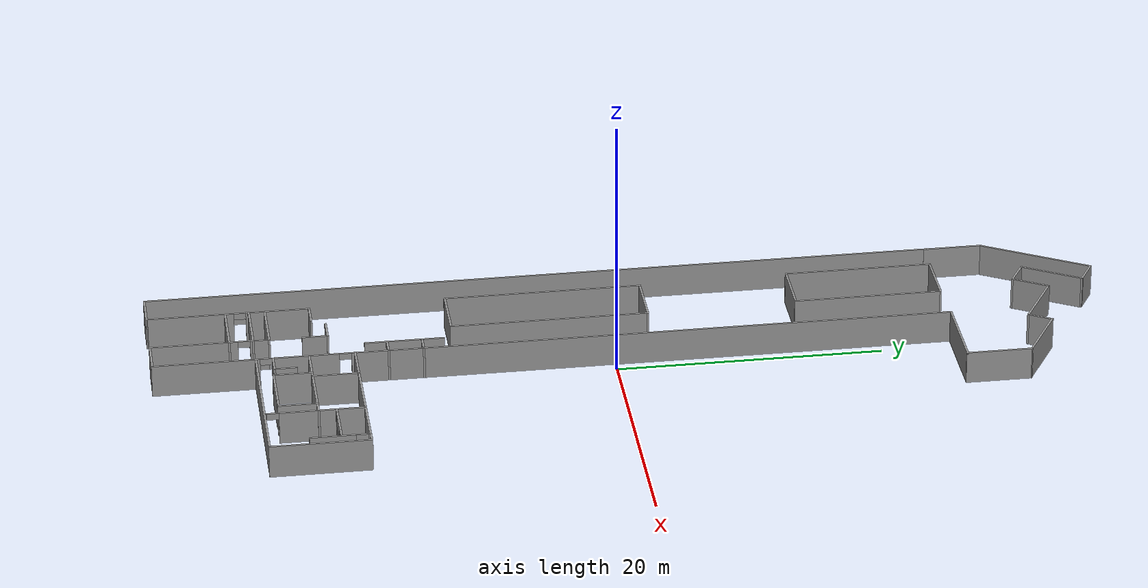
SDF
<?xml version='1.0'?>
<sdf version='1.6'>
  <model name='fei_k5'>
    <pose frame=''>0.621469 1.46181 0 0 -0 0</pose>
    <link name='Wall_10'>
      <collision name='Wall_10_Collision'>
        <geometry>
          <box>
            <size>4.5 0.15 2.5</size>
          </box>
        </geometry>
        <pose frame=''>0 0 1.25 0 -0 0</pose>
      </collision>
      <visual name='Wall_10_Visual'>
        <pose frame=''>0 0 1.25 0 -0 0</pose>
        <geometry>
          <box>
            <size>4.5 0.15 2.5</size>
          </box>
        </geometry>
        <material>
          <script>
            <uri>file://media/materials/scripts/gazebo.material</uri>
            <name>Gazebo/Grey</name>
          </script>
          <ambient>1 1 1 1</ambient>
        </material>
        <meta>
          <layer>0</layer>
        </meta>
      </visual>
      <pose frame=''>-6.57828 1.39977 0 0 -0 3.14159</pose>
    </link>
    <link name='Wall_11'>
      <collision name='Wall_11_Collision'>
        <geometry>
          <box>
            <size>15 0.15 2.5</size>
          </box>
        </geometry>
        <pose frame=''>0 0 1.25 0 -0 0</pose>
      </collision>
      <visual name='Wall_11_Visual'>
        <pose frame=''>0 0 1.25 0 -0 0</pose>
        <geometry>
          <box>
            <size>15 0.15 2.5</size>
          </box>
        </geometry>
        <material>
          <script>
            <uri>file://media/materials/scripts/gazebo.material</uri>
            <name>Gazebo/Grey</name>
          </script>
          <ambient>1 1 1 1</ambient>
        </material>
        <meta>
          <layer>0</layer>
        </meta>
      </visual>
      <pose frame=''>-8.75328 -6.02523 0 0 -0 -1.5708</pose>
    </link>
    <link name='Wall_16'>
      <collision name='Wall_16_Collision'>
        <geometry>
          <box>
            <size>4.5 0.15 2.5</size>
          </box>
        </geometry>
        <pose frame=''>0 0 1.25 0 -0 0</pose>
      </collision>
      <visual name='Wall_16_Visual'>
        <pose frame=''>0 0 1.25 0 -0 0</pose>
        <geometry>
          <box>
            <size>4.5 0.15 2.5</size>
          </box>
        </geometry>
        <material>
          <script>
            <uri>file://media/materials/scripts/gazebo.material</uri>
            <name>Gazebo/Grey</name>
          </script>
          <ambient>1 1 1 1</ambient>
        </material>
        <meta>
          <layer>0</layer>
        </meta>
      </visual>
      <pose frame=''>-6.85668 12.6908 0 0 -0 0</pose>
    </link>
    <link name='Wall_17'>
      <collision name='Wall_17_Collision'>
        <geometry>
          <box>
            <size>11.25 0.15 2.5</size>
          </box>
        </geometry>
        <pose frame=''>0 0 1.25 0 -0 0</pose>
      </collision>
      <visual name='Wall_17_Visual'>
        <pose frame=''>0 0 1.25 0 -0 0</pose>
        <geometry>
          <box>
            <size>11.25 0.15 2.5</size>
          </box>
        </geometry>
        <material>
          <script>
            <uri>file://media/materials/scripts/gazebo.material</uri>
            <name>Gazebo/Grey</name>
          </script>
          <ambient>1 1 1 1</ambient>
        </material>
        <meta>
          <layer>0</layer>
        </meta>
      </visual>
      <pose frame=''>-4.68168 18.2408 0 0 -0 1.5708</pose>
    </link>
    <link name='Wall_18'>
      <collision name='Wall_18_Collision'>
        <geometry>
          <box>
            <size>4.5 0.15 2.5</size>
          </box>
        </geometry>
        <pose frame=''>0 0 1.25 0 -0 0</pose>
      </collision>
      <visual name='Wall_18_Visual'>
        <pose frame=''>0 0 1.25 0 -0 0</pose>
        <geometry>
          <box>
            <size>4.5 0.15 2.5</size>
          </box>
        </geometry>
        <material>
          <script>
            <uri>file://media/materials/scripts/gazebo.material</uri>
            <name>Gazebo/Grey</name>
          </script>
          <ambient>1 1 1 1</ambient>
        </material>
        <meta>
          <layer>0</layer>
        </meta>
      </visual>
      <pose frame=''>-6.85668 23.7908 0 0 -0 3.14159</pose>
    </link>
    <link name='Wall_19'>
      <collision name='Wall_19_Collision'>
        <geometry>
          <box>
            <size>11.25 0.15 2.5</size>
          </box>
        </geometry>
        <pose frame=''>0 0 1.25 0 -0 0</pose>
      </collision>
      <visual name='Wall_19_Visual'>
        <pose frame=''>0 0 1.25 0 -0 0</pose>
        <geometry>
          <box>
            <size>11.25 0.15 2.5</size>
          </box>
        </geometry>
        <material>
          <script>
            <uri>file://media/materials/scripts/gazebo.material</uri>
            <name>Gazebo/Grey</name>
          </script>
          <ambient>1 1 1 1</ambient>
        </material>
        <meta>
          <layer>0</layer>
        </meta>
      </visual>
      <pose frame=''>-9.03168 18.2408 0 0 -0 -1.5708</pose>
    </link>
    <link name='Wall_21'>
      <collision name='Wall_21_Collision'>
        <geometry>
          <box>
            <size>3 0.15 2.5</size>
          </box>
        </geometry>
        <pose frame=''>0 0 1.25 0 -0 0</pose>
      </collision>
      <visual name='Wall_21_Visual'>
        <pose frame=''>0 0 1.25 0 -0 0</pose>
        <geometry>
          <box>
            <size>3 0.15 2.5</size>
          </box>
        </geometry>
        <material>
          <script>
            <uri>file://media/materials/scripts/gazebo.material</uri>
            <name>Gazebo/Grey</name>
          </script>
          <ambient>1 1 1 1</ambient>
        </material>
        <meta>
          <layer>0</layer>
        </meta>
      </visual>
      <pose frame=''>-2.81965 -35.9036 0 0 -0 0</pose>
    </link>
    <link name='Wall_22'>
      <pose frame=''>-1.39465 -5.97863 0 0 -0 1.5708</pose>
      <visual name='Wall_22_Visual_0'>
        <pose frame=''>-25.9925 0 1.25 0 -0 0</pose>
        <geometry>
          <box>
            <size>8.01507 0.15 2.5</size>
          </box>
        </geometry>
        <material>
          <script>
            <uri>file://media/materials/scripts/gazebo.material</uri>
            <name>Gazebo/Grey</name>
          </script>
          <ambient>1 1 1 1</ambient>
        </material>
        <meta>
          <layer>0</layer>
        </meta>
      </visual>
      <collision name='Wall_22_Collision_0'>
        <geometry>
          <box>
            <size>8.01507 0.15 2.5</size>
          </box>
        </geometry>
        <pose frame=''>-25.9925 0 1.25 0 -0 0</pose>
      </collision>
      <visual name='Wall_22_Visual_1'>
        <pose frame=''>-18.5953 0 1.25 0 -0 0</pose>
        <geometry>
          <box>
            <size>4.97924 0.15 2.5</size>
          </box>
        </geometry>
        <material>
          <script>
            <uri>file://media/materials/scripts/gazebo.material</uri>
            <name>Gazebo/Grey</name>
          </script>
          <ambient>1 1 1 1</ambient>
        </material>
        <meta>
          <layer>0</layer>
        </meta>
      </visual>
      <collision name='Wall_22_Collision_1'>
        <geometry>
          <box>
            <size>4.97924 0.15 2.5</size>
          </box>
        </geometry>
        <pose frame=''>-18.5953 0 1.25 0 -0 0</pose>
      </collision>
      <visual name='Wall_22_Visual_2'>
        <pose frame=''>7.39715 0 1.25 0 -0 0</pose>
        <geometry>
          <box>
            <size>45.2057 0.15 2.5</size>
          </box>
        </geometry>
        <material>
          <script>
            <uri>file://media/materials/scripts/gazebo.material</uri>
            <name>Gazebo/Grey</name>
          </script>
          <ambient>1 1 1 1</ambient>
        </material>
        <meta>
          <layer>0</layer>
        </meta>
      </visual>
      <collision name='Wall_22_Collision_2'>
        <geometry>
          <box>
            <size>45.2057 0.15 2.5</size>
          </box>
        </geometry>
        <pose frame=''>7.39715 0 1.25 0 -0 0</pose>
      </collision>
      <visual name='Wall_22_Visual_3'>
        <pose frame=''>-21.5349 0 2.25 0 -0 0</pose>
        <geometry>
          <box>
            <size>0.9 0.15 0.5</size>
          </box>
        </geometry>
        <material>
          <script>
            <uri>file://media/materials/scripts/gazebo.material</uri>
            <name>Gazebo/Grey</name>
          </script>
          <ambient>1 1 1 1</ambient>
        </material>
        <meta>
          <layer>0</layer>
        </meta>
      </visual>
      <collision name='Wall_22_Collision_3'>
        <geometry>
          <box>
            <size>0.9 0.15 0.5</size>
          </box>
        </geometry>
        <pose frame=''>-21.5349 0 2.25 0 -0 0</pose>
      </collision>
      <visual name='Wall_22_Visual_4'>
        <pose frame=''>-15.6557 0 2.25 0 -0 0</pose>
        <geometry>
          <box>
            <size>0.9 0.15 0.5</size>
          </box>
        </geometry>
        <material>
          <script>
            <uri>file://media/materials/scripts/gazebo.material</uri>
            <name>Gazebo/Grey</name>
          </script>
          <ambient>1 1 1 1</ambient>
        </material>
        <meta>
          <layer>0</layer>
        </meta>
      </visual>
      <collision name='Wall_22_Collision_4'>
        <geometry>
          <box>
            <size>0.9 0.15 0.5</size>
          </box>
        </geometry>
        <pose frame=''>-15.6557 0 2.25 0 -0 0</pose>
      </collision>
    </link>
    <link name='Wall_24'>
      <collision name='Wall_24_Collision'>
        <geometry>
          <box>
            <size>6.5 0.15 2.5</size>
          </box>
        </geometry>
        <pose frame=''>0 0 1.25 0 -0 0</pose>
      </collision>
      <visual name='Wall_24_Visual'>
        <pose frame=''>0 0 1.25 0 -0 0</pose>
        <geometry>
          <box>
            <size>6.5 0.15 2.5</size>
          </box>
        </geometry>
        <material>
          <script>
            <uri>file://media/materials/scripts/gazebo.material</uri>
            <name>Gazebo/Grey</name>
          </script>
          <ambient>1 1 1 1</ambient>
        </material>
        <meta>
          <layer>0</layer>
        </meta>
      </visual>
      <pose frame=''>1.78035 23.9464 0 0 -0 0</pose>
    </link>
    <link name='Wall_25'>
      <collision name='Wall_25_Collision'>
        <geometry>
          <box>
            <size>5 0.15 2.5</size>
          </box>
        </geometry>
        <pose frame=''>0 0 1.25 0 -0 0</pose>
      </collision>
      <visual name='Wall_25_Visual'>
        <pose frame=''>0 0 1.25 0 -0 0</pose>
        <geometry>
          <box>
            <size>5 0.15 2.5</size>
          </box>
        </geometry>
        <material>
          <script>
            <uri>file://media/materials/scripts/gazebo.material</uri>
            <name>Gazebo/Grey</name>
          </script>
          <ambient>1 1 1 1</ambient>
        </material>
        <meta>
          <layer>0</layer>
        </meta>
      </visual>
      <pose frame=''>4.95535 26.3714 0 0 -0 1.5708</pose>
    </link>
    <link name='Wall_26'>
      <collision name='Wall_26_Collision'>
        <geometry>
          <box>
            <size>5 0.15 2.5</size>
          </box>
        </geometry>
        <pose frame=''>0 0 1.25 0 -0 0</pose>
      </collision>
      <visual name='Wall_26_Visual'>
        <pose frame=''>0 0 1.25 0 -0 0</pose>
        <geometry>
          <box>
            <size>5 0.15 2.5</size>
          </box>
        </geometry>
        <material>
          <script>
            <uri>file://media/materials/scripts/gazebo.material</uri>
            <name>Gazebo/Grey</name>
          </script>
          <ambient>1 1 1 1</ambient>
        </material>
        <meta>
          <layer>0</layer>
        </meta>
      </visual>
      <pose frame=''>2.85524 30.0089 0 0 -0 2.61799</pose>
    </link>
    <link name='Wall_27'>
      <collision name='Wall_27_Collision'>
        <geometry>
          <box>
            <size>2 0.15 2.5</size>
          </box>
        </geometry>
        <pose frame=''>0 0 1.25 0 -0 0</pose>
      </collision>
      <visual name='Wall_27_Visual'>
        <pose frame=''>0 0 1.25 0 -0 0</pose>
        <geometry>
          <box>
            <size>2 0.15 2.5</size>
          </box>
        </geometry>
        <material>
          <script>
            <uri>file://media/materials/scripts/gazebo.material</uri>
            <name>Gazebo/Grey</name>
          </script>
          <ambient>1 1 1 1</ambient>
        </material>
        <meta>
          <layer>0</layer>
        </meta>
      </visual>
      <pose frame=''>0.292625 30.4203 0 0 -0 -2.0944</pose>
    </link>
    <link name='Wall_28'>
      <collision name='Wall_28_Collision'>
        <geometry>
          <box>
            <size>5 0.15 2.5</size>
          </box>
        </geometry>
        <pose frame=''>0 0 1.25 0 -0 0</pose>
      </collision>
      <visual name='Wall_28_Visual'>
        <pose frame=''>0 0 1.25 0 -0 0</pose>
        <geometry>
          <box>
            <size>5 0.15 2.5</size>
          </box>
        </geometry>
        <material>
          <script>
            <uri>file://media/materials/scripts/gazebo.material</uri>
            <name>Gazebo/Grey</name>
          </script>
          <ambient>1 1 1 1</ambient>
        </material>
        <meta>
          <layer>0</layer>
        </meta>
      </visual>
      <pose frame=''>-2.26999 30.8317 0 0 -0 2.61799</pose>
    </link>
    <link name='Wall_29'>
      <collision name='Wall_29_Collision'>
        <geometry>
          <box>
            <size>3 0.15 2.5</size>
          </box>
        </geometry>
        <pose frame=''>0 0 1.25 0 -0 0</pose>
      </collision>
      <visual name='Wall_29_Visual'>
        <pose frame=''>0 0 1.25 0 -0 0</pose>
        <geometry>
          <box>
            <size>3 0.15 2.5</size>
          </box>
        </geometry>
        <material>
          <script>
            <uri>file://media/materials/scripts/gazebo.material</uri>
            <name>Gazebo/Grey</name>
          </script>
          <ambient>1 1 1 1</ambient>
        </material>
        <meta>
          <layer>0</layer>
        </meta>
      </visual>
      <pose frame=''>-5.0826 30.8101 0 0 -0 -2.0944</pose>
    </link>
    <link name='Wall_30'>
      <collision name='Wall_30_Collision'>
        <geometry>
          <box>
            <size>2.25 0.15 2.5</size>
          </box>
        </geometry>
        <pose frame=''>0 0 1.25 0 -0 0</pose>
      </collision>
      <visual name='Wall_30_Visual'>
        <pose frame=''>0 0 1.25 0 -0 0</pose>
        <geometry>
          <box>
            <size>2.25 0.15 2.5</size>
          </box>
        </geometry>
        <material>
          <script>
            <uri>file://media/materials/scripts/gazebo.material</uri>
            <name>Gazebo/Grey</name>
          </script>
          <ambient>1 1 1 1</ambient>
        </material>
        <meta>
          <layer>0</layer>
        </meta>
      </visual>
      <pose frame=''>-6.70442 30.101 0 0 -0 2.61799</pose>
    </link>
    <link name='Wall_31'>
      <collision name='Wall_31_Collision'>
        <geometry>
          <box>
            <size>5 0.15 2.5</size>
          </box>
        </geometry>
        <pose frame=''>0 0 1.25 0 -0 0</pose>
      </collision>
      <visual name='Wall_31_Visual'>
        <pose frame=''>0 0 1.25 0 -0 0</pose>
        <geometry>
          <box>
            <size>5 0.15 2.5</size>
          </box>
        </geometry>
        <material>
          <script>
            <uri>file://media/materials/scripts/gazebo.material</uri>
            <name>Gazebo/Grey</name>
          </script>
          <ambient>1 1 1 1</ambient>
        </material>
        <meta>
          <layer>0</layer>
        </meta>
      </visual>
      <pose frame=''>-6.40125 32.7262 0 0 -0 1.0472</pose>
    </link>
    <link name='Wall_32'>
      <collision name='Wall_32_Collision'>
        <geometry>
          <box>
            <size>2.25 0.15 2.5</size>
          </box>
        </geometry>
        <pose frame=''>0 0 1.25 0 -0 0</pose>
      </collision>
      <visual name='Wall_32_Visual'>
        <pose frame=''>0 0 1.25 0 -0 0</pose>
        <geometry>
          <box>
            <size>2.25 0.15 2.5</size>
          </box>
        </geometry>
        <material>
          <script>
            <uri>file://media/materials/scripts/gazebo.material</uri>
            <name>Gazebo/Grey</name>
          </script>
          <ambient>1 1 1 1</ambient>
        </material>
        <meta>
          <layer>0</layer>
        </meta>
      </visual>
      <pose frame=''>-6.09808 35.3513 0 0 -0 2.61799</pose>
    </link>
    <link name='Wall_35'>
      <pose frame=''>-4.24465 -31.4786 0 0 -0 1.5708</pose>
      <visual name='Wall_35_Visual_0'>
        <pose frame=''>-1.19967 0 1.25 0 -0 0</pose>
        <geometry>
          <box>
            <size>6.60065 0.15 2.5</size>
          </box>
        </geometry>
        <material>
          <script>
            <uri>file://media/materials/scripts/gazebo.material</uri>
            <name>Gazebo/Grey</name>
          </script>
          <ambient>1 1 1 1</ambient>
        </material>
        <meta>
          <layer>0</layer>
        </meta>
      </visual>
      <collision name='Wall_35_Collision_0'>
        <geometry>
          <box>
            <size>6.60065 0.15 2.5</size>
          </box>
        </geometry>
        <pose frame=''>-1.19967 0 1.25 0 -0 0</pose>
      </collision>
      <visual name='Wall_35_Visual_1'>
        <pose frame=''>3.75033 0 1.25 0 -0 0</pose>
        <geometry>
          <box>
            <size>1.49934 0.15 2.5</size>
          </box>
        </geometry>
        <material>
          <script>
            <uri>file://media/materials/scripts/gazebo.material</uri>
            <name>Gazebo/Grey</name>
          </script>
          <ambient>1 1 1 1</ambient>
        </material>
        <meta>
          <layer>0</layer>
        </meta>
      </visual>
      <collision name='Wall_35_Collision_1'>
        <geometry>
          <box>
            <size>1.49934 0.15 2.5</size>
          </box>
        </geometry>
        <pose frame=''>3.75033 0 1.25 0 -0 0</pose>
      </collision>
      <visual name='Wall_35_Visual_2'>
        <pose frame=''>2.55065 0 2.25 0 -0 0</pose>
        <geometry>
          <box>
            <size>0.9 0.15 0.5</size>
          </box>
        </geometry>
        <material>
          <script>
            <uri>file://media/materials/scripts/gazebo.material</uri>
            <name>Gazebo/Grey</name>
          </script>
          <ambient>1 1 1 1</ambient>
        </material>
        <meta>
          <layer>0</layer>
        </meta>
      </visual>
      <collision name='Wall_35_Collision_2'>
        <geometry>
          <box>
            <size>0.9 0.15 0.5</size>
          </box>
        </geometry>
        <pose frame=''>2.55065 0 2.25 0 -0 0</pose>
      </collision>
    </link>
    <link name='Wall_36'>
      <collision name='Wall_36_Collision'>
        <geometry>
          <box>
            <size>4.51247 0.15 2.5</size>
          </box>
        </geometry>
        <pose frame=''>0 0 1.25 0 -0 0</pose>
      </collision>
      <visual name='Wall_36_Visual'>
        <pose frame=''>0 0 1.25 0 -0 0</pose>
        <geometry>
          <box>
            <size>4.51247 0.15 2.5</size>
          </box>
        </geometry>
        <material>
          <script>
            <uri>file://media/materials/scripts/gazebo.material</uri>
            <name>Gazebo/Grey</name>
          </script>
          <ambient>1 1 1 1</ambient>
        </material>
        <meta>
          <layer>0</layer>
        </meta>
      </visual>
      <pose frame=''>-6.4254 -27.0536 0 0 -0 -3.14159</pose>
    </link>
    <link name='Wall_37'>
      <pose frame=''>-8.6004 -31.4786 0 0 -0 -1.5695</pose>
      <visual name='Wall_37_Visual_0'>
        <pose frame=''>-3.75035 0 1.25 0 -0 0</pose>
        <geometry>
          <box>
            <size>1.49931 0.15 2.5</size>
          </box>
        </geometry>
        <material>
          <script>
            <uri>file://media/materials/scripts/gazebo.material</uri>
            <name>Gazebo/Grey</name>
          </script>
          <ambient>1 1 1 1</ambient>
        </material>
        <meta>
          <layer>0</layer>
        </meta>
      </visual>
      <collision name='Wall_37_Collision_0'>
        <geometry>
          <box>
            <size>1.49931 0.15 2.5</size>
          </box>
        </geometry>
        <pose frame=''>-3.75035 0 1.25 0 -0 0</pose>
      </collision>
      <visual name='Wall_37_Visual_1'>
        <pose frame=''>1.19966 0 1.25 0 -0 0</pose>
        <geometry>
          <box>
            <size>6.60069 0.15 2.5</size>
          </box>
        </geometry>
        <material>
          <script>
            <uri>file://media/materials/scripts/gazebo.material</uri>
            <name>Gazebo/Grey</name>
          </script>
          <ambient>1 1 1 1</ambient>
        </material>
        <meta>
          <layer>0</layer>
        </meta>
      </visual>
      <collision name='Wall_37_Collision_1'>
        <geometry>
          <box>
            <size>6.60069 0.15 2.5</size>
          </box>
        </geometry>
        <pose frame=''>1.19966 0 1.25 0 -0 0</pose>
      </collision>
      <visual name='Wall_37_Visual_2'>
        <pose frame=''>-2.55069 0 2.25 0 -0 0</pose>
        <geometry>
          <box>
            <size>0.9 0.15 0.5</size>
          </box>
        </geometry>
        <material>
          <script>
            <uri>file://media/materials/scripts/gazebo.material</uri>
            <name>Gazebo/Grey</name>
          </script>
          <ambient>1 1 1 1</ambient>
        </material>
        <meta>
          <layer>0</layer>
        </meta>
      </visual>
      <collision name='Wall_37_Collision_2'>
        <geometry>
          <box>
            <size>0.9 0.15 0.5</size>
          </box>
        </geometry>
        <pose frame=''>-2.55069 0 2.25 0 -0 0</pose>
      </collision>
    </link>
    <link name='Wall_38'>
      <collision name='Wall_38_Collision'>
        <geometry>
          <box>
            <size>3 0.15 2.5</size>
          </box>
        </geometry>
        <pose frame=''>0 0 1.25 0 -0 0</pose>
      </collision>
      <visual name='Wall_38_Visual'>
        <pose frame=''>0 0 1.25 0 -0 0</pose>
        <geometry>
          <box>
            <size>3 0.15 2.5</size>
          </box>
        </geometry>
        <material>
          <script>
            <uri>file://media/materials/scripts/gazebo.material</uri>
            <name>Gazebo/Grey</name>
          </script>
          <ambient>1 1 1 1</ambient>
        </material>
        <meta>
          <layer>0</layer>
        </meta>
      </visual>
      <pose frame=''>-10.0197 -35.9036 0 0 -0 3.14159</pose>
    </link>
    <link name='Wall_39'>
      <collision name='Wall_39_Collision'>
        <geometry>
          <box>
            <size>60 0.15 2.5</size>
          </box>
        </geometry>
        <pose frame=''>0 0 1.25 0 -0 0</pose>
      </collision>
      <visual name='Wall_39_Visual'>
        <pose frame=''>0 0 1.25 0 -0 0</pose>
        <geometry>
          <box>
            <size>60 0.15 2.5</size>
          </box>
        </geometry>
        <material>
          <script>
            <uri>file://media/materials/scripts/gazebo.material</uri>
            <name>Gazebo/Grey</name>
          </script>
          <ambient>1 1 1 1</ambient>
        </material>
        <meta>
          <layer>0</layer>
        </meta>
      </visual>
      <pose frame=''>-11.4447 -5.97863 0 0 -0 1.5708</pose>
    </link>
    <link name='Wall_43'>
      <collision name='Wall_43_Collision'>
        <geometry>
          <box>
            <size>9 0.15 2.5</size>
          </box>
        </geometry>
        <pose frame=''>0 0 1.25 0 -0 0</pose>
      </collision>
      <visual name='Wall_43_Visual'>
        <pose frame=''>0 0 1.25 0 -0 0</pose>
        <geometry>
          <box>
            <size>9 0.15 2.5</size>
          </box>
        </geometry>
        <material>
          <script>
            <uri>file://media/materials/scripts/gazebo.material</uri>
            <name>Gazebo/Grey</name>
          </script>
          <ambient>1 1 1 1</ambient>
        </material>
        <meta>
          <layer>0</layer>
        </meta>
      </visual>
      <pose frame=''>-9.21991 32.0441 0 0 -0 -2.0944</pose>
    </link>
    <link name='Wall_44'>
      <collision name='Wall_44_Collision'>
        <geometry>
          <box>
            <size>4.5 0.15 2.5</size>
          </box>
        </geometry>
        <pose frame=''>0 0 1.25 0 -0 0</pose>
      </collision>
      <visual name='Wall_44_Visual'>
        <pose frame=''>0 0 1.25 0 -0 0</pose>
        <geometry>
          <box>
            <size>4.5 0.15 2.5</size>
          </box>
        </geometry>
        <material>
          <script>
            <uri>file://media/materials/scripts/gazebo.material</uri>
            <name>Gazebo/Grey</name>
          </script>
          <ambient>1 1 1 1</ambient>
        </material>
        <meta>
          <layer>0</layer>
        </meta>
      </visual>
      <pose frame=''>-11.4324 26.0369 0 0 -0 -1.5708</pose>
    </link>
    <link name='Wall_46'>
      <collision name='Wall_46_Collision'>
        <geometry>
          <box>
            <size>4.5 0.15 2.5</size>
          </box>
        </geometry>
        <pose frame=''>0 0 1.25 0 -0 0</pose>
      </collision>
      <visual name='Wall_46_Visual'>
        <pose frame=''>0 0 1.25 0 -0 0</pose>
        <geometry>
          <box>
            <size>4.5 0.15 2.5</size>
          </box>
        </geometry>
        <material>
          <script>
            <uri>file://media/materials/scripts/gazebo.material</uri>
            <name>Gazebo/Grey</name>
          </script>
          <ambient>1 1 1 1</ambient>
        </material>
        <meta>
          <layer>0</layer>
        </meta>
      </visual>
      <pose frame=''>-6.4145 -28.2483 0 0 -0 0</pose>
    </link>
    <link name='Wall_48'>
      <collision name='Wall_48_Collision'>
        <geometry>
          <box>
            <size>4.5 0.15 2.5</size>
          </box>
        </geometry>
        <pose frame=''>0 0 1.25 0 -0 0</pose>
      </collision>
      <visual name='Wall_48_Visual'>
        <pose frame=''>0 0 1.25 0 -0 0</pose>
        <geometry>
          <box>
            <size>4.5 0.15 2.5</size>
          </box>
        </geometry>
        <material>
          <script>
            <uri>file://media/materials/scripts/gazebo.material</uri>
            <name>Gazebo/Grey</name>
          </script>
          <ambient>1 1 1 1</ambient>
        </material>
        <meta>
          <layer>0</layer>
        </meta>
      </visual>
      <pose frame=''>-6.40898 -30.0212 0 0 -0 0</pose>
    </link>
    <link name='Wall_50'>
      <collision name='Wall_50_Collision'>
        <geometry>
          <box>
            <size>2 0.15 2.5</size>
          </box>
        </geometry>
        <pose frame=''>0 0 1.25 0 -0 0</pose>
      </collision>
      <visual name='Wall_50_Visual'>
        <pose frame=''>0 0 1.25 0 -0 0</pose>
        <geometry>
          <box>
            <size>2 0.15 2.5</size>
          </box>
        </geometry>
        <material>
          <script>
            <uri>file://media/materials/scripts/gazebo.material</uri>
            <name>Gazebo/Grey</name>
          </script>
          <ambient>1 1 1 1</ambient>
        </material>
        <meta>
          <layer>0</layer>
        </meta>
      </visual>
      <pose frame=''>-7.68115 -23.7151 0 0 -0 3.14159</pose>
    </link>
    <link name='Wall_51'>
      <collision name='Wall_51_Collision'>
        <geometry>
          <box>
            <size>3.5 0.15 2.5</size>
          </box>
        </geometry>
        <pose frame=''>0 0 1.25 0 -0 0</pose>
      </collision>
      <visual name='Wall_51_Visual'>
        <pose frame=''>0 0 1.25 0 -0 0</pose>
        <geometry>
          <box>
            <size>3.5 0.15 2.5</size>
          </box>
        </geometry>
        <material>
          <script>
            <uri>file://media/materials/scripts/gazebo.material</uri>
            <name>Gazebo/Grey</name>
          </script>
          <ambient>1 1 1 1</ambient>
        </material>
        <meta>
          <layer>0</layer>
        </meta>
      </visual>
      <pose frame=''>-8.60615 -25.3901 0 0 -0 -1.5708</pose>
    </link>
    <link name='Wall_53'>
      <collision name='Wall_53_Collision'>
        <geometry>
          <box>
            <size>2 0.15 2.5</size>
          </box>
        </geometry>
        <pose frame=''>0 0 1.25 0 -0 0</pose>
      </collision>
      <visual name='Wall_53_Visual'>
        <pose frame=''>0 0 1.25 0 -0 0</pose>
        <geometry>
          <box>
            <size>2 0.15 2.5</size>
          </box>
        </geometry>
        <material>
          <script>
            <uri>file://media/materials/scripts/gazebo.material</uri>
            <name>Gazebo/Grey</name>
          </script>
          <ambient>1 1 1 1</ambient>
        </material>
        <meta>
          <layer>0</layer>
        </meta>
      </visual>
      <pose frame=''>-4.22528 -23.6207 0 0 -0 1.5708</pose>
    </link>
    <link name='Wall_54'>
      <collision name='Wall_54_Collision'>
        <geometry>
          <box>
            <size>2 0.15 2.5</size>
          </box>
        </geometry>
        <pose frame=''>0 0 1.25 0 -0 0</pose>
      </collision>
      <visual name='Wall_54_Visual'>
        <pose frame=''>0 0 1.25 0 -0 0</pose>
        <geometry>
          <box>
            <size>2 0.15 2.5</size>
          </box>
        </geometry>
        <material>
          <script>
            <uri>file://media/materials/scripts/gazebo.material</uri>
            <name>Gazebo/Grey</name>
          </script>
          <ambient>1 1 1 1</ambient>
        </material>
        <meta>
          <layer>0</layer>
        </meta>
      </visual>
      <pose frame=''>-5.13878 -22.6957 0 0 -0 3.14159</pose>
    </link>
    <link name='Wall_56'>
      <collision name='Wall_56_Collision'>
        <geometry>
          <box>
            <size>1.5 0.15 2.5</size>
          </box>
        </geometry>
        <pose frame=''>0 0 1.25 0 -0 0</pose>
      </collision>
      <visual name='Wall_56_Visual'>
        <pose frame=''>0 0 1.25 0 -0 0</pose>
        <geometry>
          <box>
            <size>1.5 0.15 2.5</size>
          </box>
        </geometry>
        <material>
          <script>
            <uri>file://media/materials/scripts/gazebo.material</uri>
            <name>Gazebo/Grey</name>
          </script>
          <ambient>1 1 1 1</ambient>
        </material>
        <meta>
          <layer>0</layer>
        </meta>
      </visual>
      <pose frame=''>-2.06514 -18.4174 0 0 -0 3.14159</pose>
    </link>
    <link name='Wall_58'>
      <collision name='Wall_58_Collision'>
        <geometry>
          <box>
            <size>1.5 0.15 2.5</size>
          </box>
        </geometry>
        <pose frame=''>0 0 1.25 0 -0 0</pose>
      </collision>
      <visual name='Wall_58_Visual'>
        <pose frame=''>0 0 1.25 0 -0 0</pose>
        <geometry>
          <box>
            <size>1.5 0.15 2.5</size>
          </box>
        </geometry>
        <material>
          <script>
            <uri>file://media/materials/scripts/gazebo.material</uri>
            <name>Gazebo/Grey</name>
          </script>
          <ambient>1 1 1 1</ambient>
        </material>
        <meta>
          <layer>0</layer>
        </meta>
      </visual>
      <pose frame=''>-2.06514 -15.8037 0 0 -0 3.14159</pose>
    </link>
    <link name='Wall_60'>
      <collision name='Wall_60_Collision'>
        <geometry>
          <box>
            <size>6 0.15 2.5</size>
          </box>
        </geometry>
        <pose frame=''>0 0 1.25 0 -0 0</pose>
      </collision>
      <visual name='Wall_60_Visual'>
        <pose frame=''>0 0 1.25 0 -0 0</pose>
        <geometry>
          <box>
            <size>6 0.15 2.5</size>
          </box>
        </geometry>
        <material>
          <script>
            <uri>file://media/materials/scripts/gazebo.material</uri>
            <name>Gazebo/Grey</name>
          </script>
          <ambient>1 1 1 1</ambient>
        </material>
        <meta>
          <layer>0</layer>
        </meta>
      </visual>
      <pose frame=''>-2.73172 -17.1095 0 0 -0 -1.5708</pose>
    </link>
    <link name='Wall_62'>
      <collision name='Wall_62_Collision'>
        <geometry>
          <box>
            <size>13 0.15 2.5</size>
          </box>
        </geometry>
        <pose frame=''>0 0 1.25 0 -0 0</pose>
      </collision>
      <visual name='Wall_62_Visual'>
        <pose frame=''>0 0 1.25 0 -0 0</pose>
        <geometry>
          <box>
            <size>13 0.15 2.5</size>
          </box>
        </geometry>
        <material>
          <script>
            <uri>file://media/materials/scripts/gazebo.material</uri>
            <name>Gazebo/Grey</name>
          </script>
          <ambient>1 1 1 1</ambient>
        </material>
        <meta>
          <layer>0</layer>
        </meta>
      </visual>
      <pose frame=''>5.03486 -28.2711 0 0 -0 0</pose>
    </link>
    <link name='Wall_63'>
      <collision name='Wall_63_Collision'>
        <geometry>
          <box>
            <size>7.5 0.15 2.5</size>
          </box>
        </geometry>
        <pose frame=''>0 0 1.25 0 -0 0</pose>
      </collision>
      <visual name='Wall_63_Visual'>
        <pose frame=''>0 0 1.25 0 -0 0</pose>
        <geometry>
          <box>
            <size>7.5 0.15 2.5</size>
          </box>
        </geometry>
        <material>
          <script>
            <uri>file://media/materials/scripts/gazebo.material</uri>
            <name>Gazebo/Grey</name>
          </script>
          <ambient>1 1 1 1</ambient>
        </material>
        <meta>
          <layer>0</layer>
        </meta>
      </visual>
      <pose frame=''>11.4599 -24.5961 0 0 -0 1.5708</pose>
    </link>
    <link name='Wall_64'>
      <collision name='Wall_64_Collision'>
        <geometry>
          <box>
            <size>13 0.15 2.5</size>
          </box>
        </geometry>
        <pose frame=''>0 0 1.25 0 -0 0</pose>
      </collision>
      <visual name='Wall_64_Visual'>
        <pose frame=''>0 0 1.25 0 -0 0</pose>
        <geometry>
          <box>
            <size>13 0.15 2.5</size>
          </box>
        </geometry>
        <material>
          <script>
            <uri>file://media/materials/scripts/gazebo.material</uri>
            <name>Gazebo/Grey</name>
          </script>
          <ambient>1 1 1 1</ambient>
        </material>
        <meta>
          <layer>0</layer>
        </meta>
      </visual>
      <pose frame=''>5.03486 -20.9211 0 0 -0 3.14159</pose>
    </link>
    <link name='Wall_66'>
      <pose frame=''>2.73511 -24.3281 0 0 -0 0</pose>
      <visual name='Wall_66_Visual_0'>
        <pose frame=''>-0.540442 0 1.25 0 -0 0</pose>
        <geometry>
          <box>
            <size>7.16911 0.15 2.5</size>
          </box>
        </geometry>
        <material>
          <script>
            <uri>file://media/materials/scripts/gazebo.material</uri>
            <name>Gazebo/Grey</name>
          </script>
          <ambient>1 1 1 1</ambient>
        </material>
        <meta>
          <layer>0</layer>
        </meta>
      </visual>
      <collision name='Wall_66_Collision_0'>
        <geometry>
          <box>
            <size>7.16911 0.15 2.5</size>
          </box>
        </geometry>
        <pose frame=''>-0.540442 0 1.25 0 -0 0</pose>
      </collision>
      <visual name='Wall_66_Visual_1'>
        <pose frame=''>4.03456 0 1.25 0 -0 0</pose>
        <geometry>
          <box>
            <size>0.180885 0.15 2.5</size>
          </box>
        </geometry>
        <material>
          <script>
            <uri>file://media/materials/scripts/gazebo.material</uri>
            <name>Gazebo/Grey</name>
          </script>
          <ambient>1 1 1 1</ambient>
        </material>
        <meta>
          <layer>0</layer>
        </meta>
      </visual>
      <collision name='Wall_66_Collision_1'>
        <geometry>
          <box>
            <size>0.180885 0.15 2.5</size>
          </box>
        </geometry>
        <pose frame=''>4.03456 0 1.25 0 -0 0</pose>
      </collision>
      <visual name='Wall_66_Visual_2'>
        <pose frame=''>3.49411 0 2.25 0 -0 0</pose>
        <geometry>
          <box>
            <size>0.9 0.15 0.5</size>
          </box>
        </geometry>
        <material>
          <script>
            <uri>file://media/materials/scripts/gazebo.material</uri>
            <name>Gazebo/Grey</name>
          </script>
          <ambient>1 1 1 1</ambient>
        </material>
        <meta>
          <layer>0</layer>
        </meta>
      </visual>
      <collision name='Wall_66_Collision_2'>
        <geometry>
          <box>
            <size>0.9 0.15 0.5</size>
          </box>
        </geometry>
        <pose frame=''>3.49411 0 2.25 0 -0 0</pose>
      </collision>
    </link>
    <link name='Wall_68'>
      <collision name='Wall_68_Collision'>
        <geometry>
          <box>
            <size>3.5 0.15 2.5</size>
          </box>
        </geometry>
        <pose frame=''>0 0 1.25 0 -0 0</pose>
      </collision>
      <visual name='Wall_68_Visual'>
        <pose frame=''>0 0 1.25 0 -0 0</pose>
        <geometry>
          <box>
            <size>3.5 0.15 2.5</size>
          </box>
        </geometry>
        <material>
          <script>
            <uri>file://media/materials/scripts/gazebo.material</uri>
            <name>Gazebo/Grey</name>
          </script>
          <ambient>1 1 1 1</ambient>
        </material>
        <meta>
          <layer>0</layer>
        </meta>
      </visual>
      <pose frame=''>1.66192 -22.6128 0 0 -0 1.5708</pose>
    </link>
    <link name='Wall_71'>
      <pose frame=''>6.75065 -24.5837 0 0 -0 -1.5708</pose>
      <visual name='Wall_71_Visual_0'>
        <pose frame=''>-0.551443 0 1.25 0 -0 0</pose>
        <geometry>
          <box>
            <size>6.39712 0.15 2.5</size>
          </box>
        </geometry>
        <material>
          <script>
            <uri>file://media/materials/scripts/gazebo.material</uri>
            <name>Gazebo/Grey</name>
          </script>
          <ambient>1 1 1 1</ambient>
        </material>
        <meta>
          <layer>0</layer>
        </meta>
      </visual>
      <collision name='Wall_71_Collision_0'>
        <geometry>
          <box>
            <size>6.39712 0.15 2.5</size>
          </box>
        </geometry>
        <pose frame=''>-0.551443 0 1.25 0 -0 0</pose>
      </collision>
      <visual name='Wall_71_Visual_1'>
        <pose frame=''>3.64856 0 1.25 0 -0 0</pose>
        <geometry>
          <box>
            <size>0.202885 0.15 2.5</size>
          </box>
        </geometry>
        <material>
          <script>
            <uri>file://media/materials/scripts/gazebo.material</uri>
            <name>Gazebo/Grey</name>
          </script>
          <ambient>1 1 1 1</ambient>
        </material>
        <meta>
          <layer>0</layer>
        </meta>
      </visual>
      <collision name='Wall_71_Collision_1'>
        <geometry>
          <box>
            <size>0.202885 0.15 2.5</size>
          </box>
        </geometry>
        <pose frame=''>3.64856 0 1.25 0 -0 0</pose>
      </collision>
      <visual name='Wall_71_Visual_2'>
        <pose frame=''>3.09712 0 2.25 0 -0 0</pose>
        <geometry>
          <box>
            <size>0.9 0.15 0.5</size>
          </box>
        </geometry>
        <material>
          <script>
            <uri>file://media/materials/scripts/gazebo.material</uri>
            <name>Gazebo/Grey</name>
          </script>
          <ambient>1 1 1 1</ambient>
        </material>
        <meta>
          <layer>0</layer>
        </meta>
      </visual>
      <collision name='Wall_71_Collision_2'>
        <geometry>
          <box>
            <size>0.9 0.15 0.5</size>
          </box>
        </geometry>
        <pose frame=''>3.09712 0 2.25 0 -0 0</pose>
      </collision>
    </link>
    <link name='Wall_73'>
      <collision name='Wall_73_Collision'>
        <geometry>
          <box>
            <size>3 0.15 2.5</size>
          </box>
        </geometry>
        <pose frame=''>0 0 1.25 0 -0 0</pose>
      </collision>
      <visual name='Wall_73_Visual'>
        <pose frame=''>0 0 1.25 0 -0 0</pose>
        <geometry>
          <box>
            <size>3 0.15 2.5</size>
          </box>
        </geometry>
        <material>
          <script>
            <uri>file://media/materials/scripts/gazebo.material</uri>
            <name>Gazebo/Grey</name>
          </script>
          <ambient>1 1 1 1</ambient>
        </material>
        <meta>
          <layer>0</layer>
        </meta>
      </visual>
      <pose frame=''>1.11885 -25.7329 0 0 -0 -1.5708</pose>
    </link>
    <link name='Wall_74'>
      <pose frame=''>3.41885 -27.1579 0 0 -0 0</pose>
      <visual name='Wall_74_Visual_0'>
        <pose frame=''>-0.516807 0 1.25 0 -0 0</pose>
        <geometry>
          <box>
            <size>3.71639 0.15 2.5</size>
          </box>
        </geometry>
        <material>
          <script>
            <uri>file://media/materials/scripts/gazebo.material</uri>
            <name>Gazebo/Grey</name>
          </script>
          <ambient>1 1 1 1</ambient>
        </material>
        <meta>
          <layer>0</layer>
        </meta>
      </visual>
      <collision name='Wall_74_Collision_0'>
        <geometry>
          <box>
            <size>3.71639 0.15 2.5</size>
          </box>
        </geometry>
        <pose frame=''>-0.516807 0 1.25 0 -0 0</pose>
      </collision>
      <visual name='Wall_74_Visual_1'>
        <pose frame=''>2.30819 0 1.25 0 -0 0</pose>
        <geometry>
          <box>
            <size>0.133613 0.15 2.5</size>
          </box>
        </geometry>
        <material>
          <script>
            <uri>file://media/materials/scripts/gazebo.material</uri>
            <name>Gazebo/Grey</name>
          </script>
          <ambient>1 1 1 1</ambient>
        </material>
        <meta>
          <layer>0</layer>
        </meta>
      </visual>
      <collision name='Wall_74_Collision_1'>
        <geometry>
          <box>
            <size>0.133613 0.15 2.5</size>
          </box>
        </geometry>
        <pose frame=''>2.30819 0 1.25 0 -0 0</pose>
      </collision>
      <visual name='Wall_74_Visual_2'>
        <pose frame=''>1.79139 0 2.25 0 -0 0</pose>
        <geometry>
          <box>
            <size>0.9 0.15 0.5</size>
          </box>
        </geometry>
        <material>
          <script>
            <uri>file://media/materials/scripts/gazebo.material</uri>
            <name>Gazebo/Grey</name>
          </script>
          <ambient>1 1 1 1</ambient>
        </material>
        <meta>
          <layer>0</layer>
        </meta>
      </visual>
      <collision name='Wall_74_Collision_2'>
        <geometry>
          <box>
            <size>0.9 0.15 0.5</size>
          </box>
        </geometry>
        <pose frame=''>1.79139 0 2.25 0 -0 0</pose>
      </collision>
    </link>
    <link name='Wall_75'>
      <collision name='Wall_75_Collision'>
        <geometry>
          <box>
            <size>3 0.15 2.5</size>
          </box>
        </geometry>
        <pose frame=''>0 0 1.25 0 -0 0</pose>
      </collision>
      <visual name='Wall_75_Visual'>
        <pose frame=''>0 0 1.25 0 -0 0</pose>
        <geometry>
          <box>
            <size>3 0.15 2.5</size>
          </box>
        </geometry>
        <material>
          <script>
            <uri>file://media/materials/scripts/gazebo.material</uri>
            <name>Gazebo/Grey</name>
          </script>
          <ambient>1 1 1 1</ambient>
        </material>
        <meta>
          <layer>0</layer>
        </meta>
      </visual>
      <pose frame=''>5.71885 -25.7329 0 0 -0 1.5708</pose>
    </link>
    <link name='Wall_79'>
      <collision name='Wall_79_Collision'>
        <geometry>
          <box>
            <size>1.75 0.15 2.5</size>
          </box>
        </geometry>
        <pose frame=''>0 0 1.25 0 -0 0</pose>
      </collision>
      <visual name='Wall_79_Visual'>
        <pose frame=''>0 0 1.25 0 -0 0</pose>
        <geometry>
          <box>
            <size>1.75 0.15 2.5</size>
          </box>
        </geometry>
        <material>
          <script>
            <uri>file://media/materials/scripts/gazebo.material</uri>
            <name>Gazebo/Grey</name>
          </script>
          <ambient>1 1 1 1</ambient>
        </material>
        <meta>
          <layer>0</layer>
        </meta>
      </visual>
      <pose frame=''>-0.56983 -27.0032 0 0 -0 0</pose>
    </link>
    <link name='Wall_8'>
      <collision name='Wall_8_Collision'>
        <geometry>
          <box>
            <size>4.5 0.15 2.5</size>
          </box>
        </geometry>
        <pose frame=''>0 0 1.25 0 -0 0</pose>
      </collision>
      <visual name='Wall_8_Visual'>
        <pose frame=''>0 0 1.25 0 -0 0</pose>
        <geometry>
          <box>
            <size>4.5 0.15 2.5</size>
          </box>
        </geometry>
        <material>
          <script>
            <uri>file://media/materials/scripts/gazebo.material</uri>
            <name>Gazebo/Grey</name>
          </script>
          <ambient>1 1 1 1</ambient>
        </material>
        <meta>
          <layer>0</layer>
        </meta>
      </visual>
      <pose frame=''>-6.57828 -13.4502 0 0 -0 0</pose>
    </link>
    <link name='Wall_80'>
      <collision name='Wall_80_Collision'>
        <geometry>
          <box>
            <size>1.75 0.15 2.5</size>
          </box>
        </geometry>
        <pose frame=''>0 0 1.25 0 -0 0</pose>
      </collision>
      <visual name='Wall_80_Visual'>
        <pose frame=''>0 0 1.25 0 -0 0</pose>
        <geometry>
          <box>
            <size>1.75 0.15 2.5</size>
          </box>
        </geometry>
        <material>
          <script>
            <uri>file://media/materials/scripts/gazebo.material</uri>
            <name>Gazebo/Grey</name>
          </script>
          <ambient>1 1 1 1</ambient>
        </material>
        <meta>
          <layer>0</layer>
        </meta>
      </visual>
      <pose frame=''>0.214962 -26.2032 0 0 -0 1.5708</pose>
    </link>
    <link name='Wall_84'>
      <pose frame=''>10.6099 -23.0961 0 0 -0 -1.5708</pose>
      <visual name='Wall_84_Visual_0'>
        <pose frame=''>-2.12977 0 1.25 0 -0 0</pose>
        <geometry>
          <box>
            <size>0.240468 0.15 2.5</size>
          </box>
        </geometry>
        <material>
          <script>
            <uri>file://media/materials/scripts/gazebo.material</uri>
            <name>Gazebo/Grey</name>
          </script>
          <ambient>1 1 1 1</ambient>
        </material>
        <meta>
          <layer>0</layer>
        </meta>
      </visual>
      <collision name='Wall_84_Collision_0'>
        <geometry>
          <box>
            <size>0.240468 0.15 2.5</size>
          </box>
        </geometry>
        <pose frame=''>-2.12977 0 1.25 0 -0 0</pose>
      </collision>
      <visual name='Wall_84_Visual_1'>
        <pose frame=''>0.570234 0 1.25 0 -0 0</pose>
        <geometry>
          <box>
            <size>3.35953 0.15 2.5</size>
          </box>
        </geometry>
        <material>
          <script>
            <uri>file://media/materials/scripts/gazebo.material</uri>
            <name>Gazebo/Grey</name>
          </script>
          <ambient>1 1 1 1</ambient>
        </material>
        <meta>
          <layer>0</layer>
        </meta>
      </visual>
      <collision name='Wall_84_Collision_1'>
        <geometry>
          <box>
            <size>3.35953 0.15 2.5</size>
          </box>
        </geometry>
        <pose frame=''>0.570234 0 1.25 0 -0 0</pose>
      </collision>
      <visual name='Wall_84_Visual_2'>
        <pose frame=''>-1.55953 0 2.25 0 -0 0</pose>
        <geometry>
          <box>
            <size>0.9 0.15 0.5</size>
          </box>
        </geometry>
        <material>
          <script>
            <uri>file://media/materials/scripts/gazebo.material</uri>
            <name>Gazebo/Grey</name>
          </script>
          <ambient>1 1 1 1</ambient>
        </material>
        <meta>
          <layer>0</layer>
        </meta>
      </visual>
      <collision name='Wall_84_Collision_2'>
        <geometry>
          <box>
            <size>0.9 0.15 0.5</size>
          </box>
        </geometry>
        <pose frame=''>-1.55953 0 2.25 0 -0 0</pose>
      </collision>
    </link>
    <link name='Wall_87'>
      <pose frame=''>8.68486 -23.0211 0 0 -0 3.14159</pose>
      <visual name='Wall_87_Visual_0'>
        <pose frame=''>-1.51587 0 1.25 0 -0 0</pose>
        <geometry>
          <box>
            <size>0.968253 0.15 2.5</size>
          </box>
        </geometry>
        <material>
          <script>
            <uri>file://media/materials/scripts/gazebo.material</uri>
            <name>Gazebo/Grey</name>
          </script>
          <ambient>1 1 1 1</ambient>
        </material>
        <meta>
          <layer>0</layer>
        </meta>
      </visual>
      <collision name='Wall_87_Collision_0'>
        <geometry>
          <box>
            <size>0.968253 0.15 2.5</size>
          </box>
        </geometry>
        <pose frame=''>-1.51587 0 1.25 0 -0 0</pose>
      </collision>
      <visual name='Wall_87_Visual_1'>
        <pose frame=''>0.484127 0 0.25 0 -0 0</pose>
        <geometry>
          <box>
            <size>3.03175 0.15 0.5</size>
          </box>
        </geometry>
        <material>
          <script>
            <uri>file://media/materials/scripts/gazebo.material</uri>
            <name>Gazebo/Grey</name>
          </script>
          <ambient>1 1 1 1</ambient>
        </material>
        <meta>
          <layer>0</layer>
        </meta>
      </visual>
      <collision name='Wall_87_Collision_1'>
        <geometry>
          <box>
            <size>3.03175 0.15 0.5</size>
          </box>
        </geometry>
        <pose frame=''>0.484127 0 0.25 0 -0 0</pose>
      </collision>
      <visual name='Wall_87_Visual_2'>
        <pose frame=''>1.73582 0 1.5 0 -0 0</pose>
        <geometry>
          <box>
            <size>0.528367 0.15 2</size>
          </box>
        </geometry>
        <material>
          <script>
            <uri>file://media/materials/scripts/gazebo.material</uri>
            <name>Gazebo/Grey</name>
          </script>
          <ambient>1 1 1 1</ambient>
        </material>
        <meta>
          <layer>0</layer>
        </meta>
      </visual>
      <collision name='Wall_87_Collision_2'>
        <geometry>
          <box>
            <size>0.528367 0.15 2</size>
          </box>
        </geometry>
        <pose frame=''>1.73582 0 1.5 0 -0 0</pose>
      </collision>
      <visual name='Wall_87_Visual_3'>
        <pose frame=''>0.219943 0 1.9 0 -0 0</pose>
        <geometry>
          <box>
            <size>2.50338 0.15 1.2</size>
          </box>
        </geometry>
        <material>
          <script>
            <uri>file://media/materials/scripts/gazebo.material</uri>
            <name>Gazebo/Grey</name>
          </script>
          <ambient>1 1 1 1</ambient>
        </material>
        <meta>
          <layer>0</layer>
        </meta>
      </visual>
      <collision name='Wall_87_Collision_3'>
        <geometry>
          <box>
            <size>2.50338 0.15 1.2</size>
          </box>
        </geometry>
        <pose frame=''>0.219943 0 1.9 0 -0 0</pose>
      </collision>
    </link>
    <link name='Wall_9'>
      <collision name='Wall_9_Collision'>
        <geometry>
          <box>
            <size>15 0.15 2.5</size>
          </box>
        </geometry>
        <pose frame=''>0 0 1.25 0 -0 0</pose>
      </collision>
      <visual name='Wall_9_Visual'>
        <pose frame=''>0 0 1.25 0 -0 0</pose>
        <geometry>
          <box>
            <size>15 0.15 2.5</size>
          </box>
        </geometry>
        <material>
          <script>
            <uri>file://media/materials/scripts/gazebo.material</uri>
            <name>Gazebo/Grey</name>
          </script>
          <ambient>1 1 1 1</ambient>
        </material>
        <meta>
          <layer>0</layer>
        </meta>
      </visual>
      <pose frame=''>-4.40328 -6.02523 0 0 -0 1.5708</pose>
    </link>
    <static>1</static>
  </model>
</sdf>
